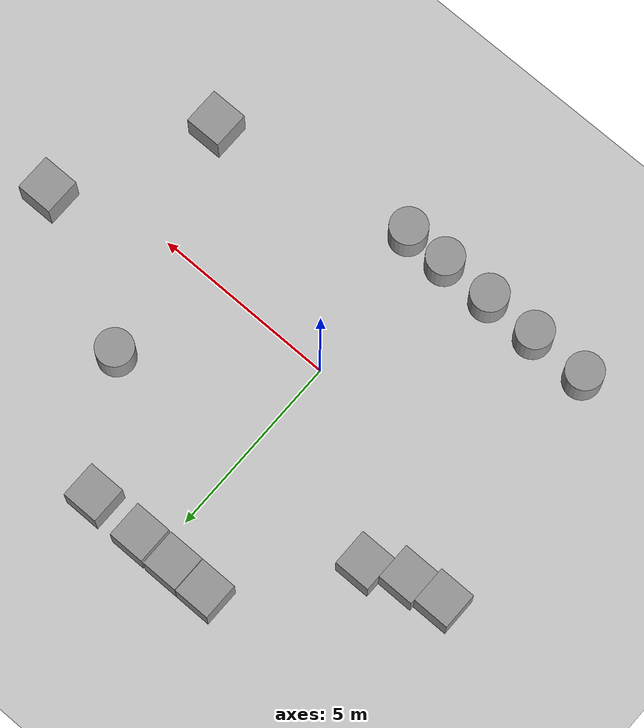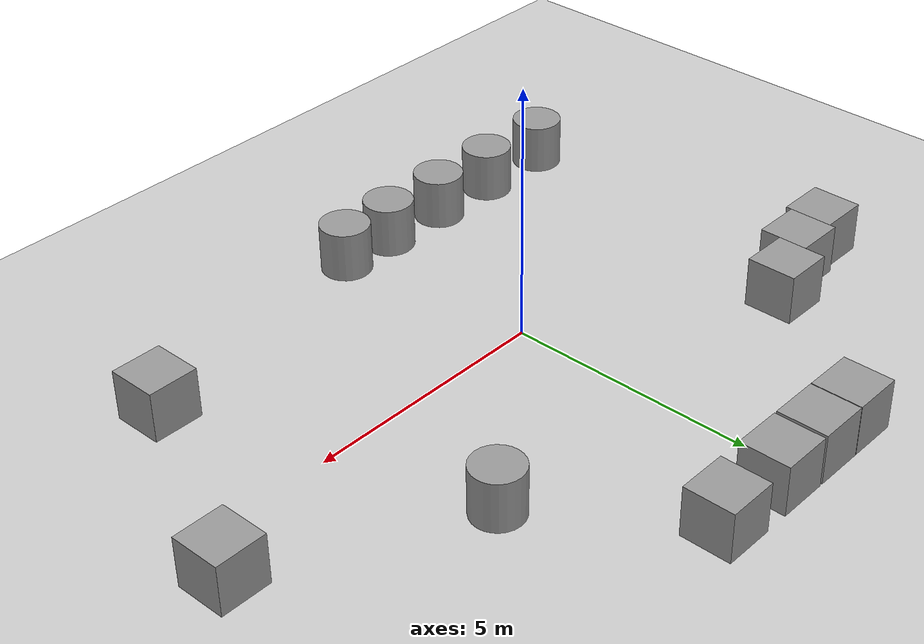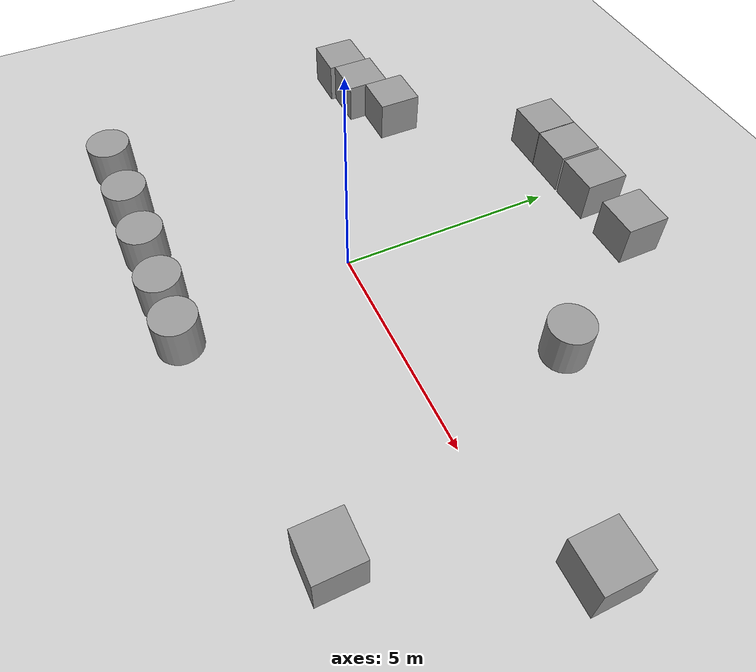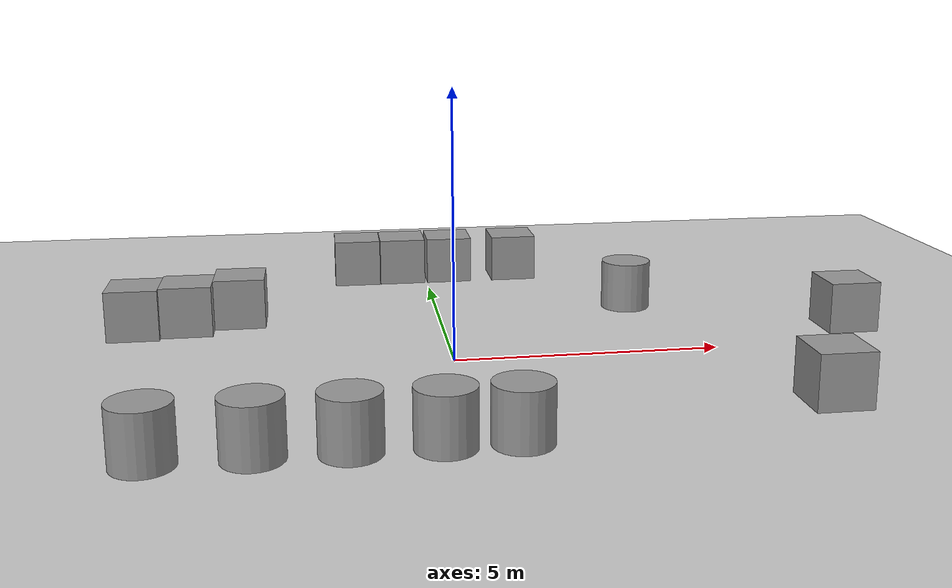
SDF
<sdf version="1.4">
 <world name="default">
  <physics type="ode">
   <gravity>0 0 -9.8</gravity>
   <ode>
    <solver><type>quick</type><iters>20</iters><sor>1</sor></solver>
    <constraints>
     <cfm>0</cfm>
     <erp>0.2</erp>
     <contact_max_correcting_vel>100</contact_max_correcting_vel>
     <contact_surface_layer>0</contact_surface_layer>
    </constraints>
   </ode>
   <max_step_size>0.001</max_step_size>
   <real_time_factor>1</real_time_factor>
   <real_time_update_rate>1000</real_time_update_rate>
  </physics>
  <light name="sun" type="directional">
   <pose>0 0 10 0 -0 0</pose>
   <diffuse>0.8 0.8 0.8 1</diffuse>
   <specular>0.2 0.2 0.2 1</specular>
   <attenuation>
    <range>1000</range>
    <constant>0.9</constant>
    <linear>0.01</linear>
    <quadratic>0.001</quadratic>
   </attenuation>
   <direction>-0.5 0.1 -0.9</direction>
  </light>
  <model name="ground_plane">
   <static>1</static>
   <link name="link">
    <collision name="collision">
     <geometry><plane><normal>0 0 1</normal><size>100 100</size></plane></geometry>
     <surface><friction><ode><mu>100</mu><mu2>50</mu2></ode></friction></surface>
    </collision>
    <visual name="visual">
     <cast_shadows>0</cast_shadows>
     <geometry><plane><normal>0 0 1</normal><size>100 100</size></plane></geometry>
     <material>
      <script><uri>file://media/materials/scripts/gazebo.material</uri><name>Gazebo/Grey</name></script>
     </material>
    </visual>
    <velocity_decay><linear>0</linear><angular>0</angular></velocity_decay>
   </link>
  </model>
  <scene><ambient>0.4 0.4 0.4 1</ambient><background>0.7 0.7 0.7 1</background><shadows>1</shadows></scene>
  <spherical_coordinates>
   <surface_model>EARTH_WGS84</surface_model>
   <latitude_deg>0</latitude_deg>
   <longitude_deg>0</longitude_deg>
   <elevation>0</elevation>
   <heading_deg>0</heading_deg>
  </spherical_coordinates>
  <model name="unit_box_1">
   <pose>6 -3 0.5 1e-06 -3.23117e-27 2e-05</pose>
   <link name="link">
    <inertial>
     <mass>1</mass>
     <inertia><ixx>1</ixx><ixy>0</ixy><ixz>0</ixz><iyy>1</iyy><iyz>0</iyz><izz>1</izz></inertia>
    </inertial>
    <collision name="collision"><geometry><box><size>1 1 1</size></box></geometry></collision>
    <visual name="visual">
     <geometry><box><size>1 1 1</size></box></geometry>
     <material>
      <script><uri>file://media/materials/scripts/gazebo.material</uri><name>Gazebo/Grey</name></script>
     </material>
    </visual>
    <velocity_decay><linear>0</linear><angular>0</angular></velocity_decay>
   </link>
   <static>0</static>
  </model>
  <model name="unit_box_2">
   <pose>8 1 0.499996 -3e-06 4e-06 -1.3e-05</pose>
   <link name="link">
    <inertial>
     <mass>1</mass>
     <inertia><ixx>1</ixx><ixy>0</ixy><ixz>0</ixz><iyy>1</iyy><iyz>0</iyz><izz>1</izz></inertia>
    </inertial>
    <collision name="collision"><geometry><box><size>1 1 1</size></box></geometry></collision>
    <visual name="visual">
     <geometry><box><size>1 1 1</size></box></geometry>
     <material>
      <script><uri>file://media/materials/scripts/gazebo.material</uri><name>Gazebo/Grey</name></script>
     </material>
    </visual>
    <velocity_decay><linear>0</linear><angular>0</angular></velocity_decay>
   </link>
   <static>0</static>
  </model>
  <model name="unit_cylinder_1">
   <pose>4 3 0.499997 0 0 -1e-06</pose>
   <link name="link">
    <inertial>
     <mass>1</mass>
     <inertia><ixx>1</ixx><ixy>0</ixy><ixz>0</ixz><iyy>1</iyy><iyz>0</iyz><izz>1</izz></inertia>
    </inertial>
    <collision name="collision">
     <geometry><cylinder><radius>0.5</radius><length>1</length></cylinder></geometry>
    </collision>
    <visual name="visual">
     <geometry><cylinder><radius>0.5</radius><length>1</length></cylinder></geometry>
     <material>
      <script><uri>file://media/materials/scripts/gazebo.material</uri><name>Gazebo/Grey</name></script>
     </material>
    </visual>
    <velocity_decay><linear>0</linear><angular>0</angular></velocity_decay>
   </link>
   <static>0</static>
  </model>
  <model name="unit_cylinder_2">
   <pose>-2 -4 0.499993 0 -0 -1e-06</pose>
   <link name="link">
    <inertial>
     <mass>1</mass>
     <inertia><ixx>1</ixx><ixy>0</ixy><ixz>0</ixz><iyy>1</iyy><iyz>0</iyz><izz>1</izz></inertia>
    </inertial>
    <collision name="collision">
     <geometry><cylinder><radius>0.5</radius><length>1</length></cylinder></geometry>
    </collision>
    <visual name="visual">
     <geometry><cylinder><radius>0.5</radius><length>1</length></cylinder></geometry>
     <material>
      <script><uri>file://media/materials/scripts/gazebo.material</uri><name>Gazebo/Grey</name></script>
     </material>
    </visual>
    <velocity_decay><linear>0</linear><angular>0</angular></velocity_decay>
   </link>
   <static>0</static>
  </model>
  <model name="unit_cylinder_3">
   <pose>-3.4317 -4 0.499997 0 0 -1e-06</pose>
   <link name="link">
    <inertial>
     <mass>1</mass>
     <inertia><ixx>1</ixx><ixy>0</ixy><ixz>0</ixz><iyy>1</iyy><iyz>0</iyz><izz>1</izz></inertia>
    </inertial>
    <collision name="collision">
     <geometry><cylinder><radius>0.5</radius><length>1</length></cylinder></geometry>
    </collision>
    <visual name="visual">
     <geometry><cylinder><radius>0.5</radius><length>1</length></cylinder></geometry>
     <material>
      <script><uri>file://media/materials/scripts/gazebo.material</uri><name>Gazebo/Grey</name></script>
     </material>
    </visual>
    <velocity_decay><linear>0</linear><angular>0</angular></velocity_decay>
   </link>
   <static>0</static>
  </model>
  <model name="unit_cylinder_4">
   <pose>-5 -4 0.499997 0 0 -1e-06</pose>
   <link name="link">
    <inertial>
     <mass>1</mass>
     <inertia><ixx>1</ixx><ixy>0</ixy><ixz>0</ixz><iyy>1</iyy><iyz>0</iyz><izz>1</izz></inertia>
    </inertial>
    <collision name="collision">
     <geometry><cylinder><radius>0.5</radius><length>1</length></cylinder></geometry>
    </collision>
    <visual name="visual">
     <geometry><cylinder><radius>0.5</radius><length>1</length></cylinder></geometry>
     <material>
      <script><uri>file://media/materials/scripts/gazebo.material</uri><name>Gazebo/Grey</name></script>
     </material>
    </visual>
    <velocity_decay><linear>0</linear><angular>0</angular></velocity_decay>
   </link>
   <static>0</static>
  </model>
  <model name="unit_box_3">
   <pose>-4.00001 2.99999 0.499996 4e-06 4e-06 4.1e-05</pose>
   <link name="link">
    <inertial>
     <mass>1</mass>
     <inertia><ixx>1</ixx><ixy>0</ixy><ixz>0</ixz><iyy>1</iyy><iyz>0</iyz><izz>1</izz></inertia>
    </inertial>
    <collision name="collision"><geometry><box><size>1 1 1</size></box></geometry></collision>
    <visual name="visual">
     <geometry><box><size>1 1 1</size></box></geometry>
     <material>
      <script><uri>file://media/materials/scripts/gazebo.material</uri><name>Gazebo/Grey</name></script>
     </material>
    </visual>
    <velocity_decay><linear>0</linear><angular>0</angular></velocity_decay>
   </link>
   <static>0</static>
  </model>
  <model name="unit_box_4">
   <pose>-5 2.5829 0.499996 4e-06 3e-06 4.2e-05</pose>
   <link name="link">
    <inertial>
     <mass>1</mass>
     <inertia><ixx>1</ixx><ixy>0</ixy><ixz>0</ixz><iyy>1</iyy><iyz>0</iyz><izz>1</izz></inertia>
    </inertial>
    <collision name="collision"><geometry><box><size>1 1 1</size></box></geometry></collision>
    <visual name="visual">
     <geometry><box><size>1 1 1</size></box></geometry>
     <material>
      <script><uri>file://media/materials/scripts/gazebo.material</uri><name>Gazebo/Grey</name></script>
     </material>
    </visual>
    <velocity_decay><linear>0</linear><angular>0</angular></velocity_decay>
   </link>
   <static>0</static>
  </model>
  <model name="unit_box_5">
   <pose>-6 2.46369 0.499996 4e-06 -3e-06 4.2e-05</pose>
   <link name="link">
    <inertial>
     <mass>1</mass>
     <inertia><ixx>1</ixx><ixy>0</ixy><ixz>0</ixz><iyy>1</iyy><iyz>0</iyz><izz>1</izz></inertia>
    </inertial>
    <collision name="collision"><geometry><box><size>1 1 1</size></box></geometry></collision>
    <visual name="visual">
     <geometry><box><size>1 1 1</size></box></geometry>
     <material>
      <script><uri>file://media/materials/scripts/gazebo.material</uri><name>Gazebo/Grey</name></script>
     </material>
    </visual>
    <velocity_decay><linear>0</linear><angular>0</angular></velocity_decay>
   </link>
   <static>0</static>
  </model>
  <model name="unit_box_6">
   <pose>-0.54344 6 0.5 -6.46235e-27 -1e-06 2.8e-05</pose>
   <link name="link">
    <inertial>
     <mass>1</mass>
     <inertia><ixx>1</ixx><ixy>0</ixy><ixz>0</ixz><iyy>1</iyy><iyz>0</iyz><izz>1</izz></inertia>
    </inertial>
    <collision name="collision"><geometry><box><size>1 1 1</size></box></geometry></collision>
    <visual name="visual">
     <geometry><box><size>1 1 1</size></box></geometry>
     <material>
      <script><uri>file://media/materials/scripts/gazebo.material</uri><name>Gazebo/Grey</name></script>
     </material>
    </visual>
    <velocity_decay><linear>0</linear><angular>0</angular></velocity_decay>
   </link>
   <static>0</static>
  </model>
  <model name="unit_box_7">
   <pose>0.516434 6 0.5 0 -0 6e-06</pose>
   <link name="link">
    <inertial>
     <mass>1</mass>
     <inertia><ixx>1</ixx><ixy>0</ixy><ixz>0</ixz><iyy>1</iyy><iyz>0</iyz><izz>1</izz></inertia>
    </inertial>
    <collision name="collision"><geometry><box><size>1 1 1</size></box></geometry></collision>
    <visual name="visual">
     <geometry><box><size>1 1 1</size></box></geometry>
     <material>
      <script><uri>file://media/materials/scripts/gazebo.material</uri><name>Gazebo/Grey</name></script>
     </material>
    </visual>
    <velocity_decay><linear>0</linear><angular>0</angular></velocity_decay>
   </link>
   <static>0</static>
  </model>
  <model name="unit_box_8">
   <pose>2 6 0.5 0 -0 3.6e-05</pose>
   <link name="link">
    <inertial>
     <mass>1</mass>
     <inertia><ixx>1</ixx><ixy>0</ixy><ixz>0</ixz><iyy>1</iyy><iyz>0</iyz><izz>1</izz></inertia>
    </inertial>
    <collision name="collision"><geometry><box><size>1 1 1</size></box></geometry></collision>
    <visual name="visual">
     <geometry><box><size>1 1 1</size></box></geometry>
     <material>
      <script><uri>file://media/materials/scripts/gazebo.material</uri><name>Gazebo/Grey</name></script>
     </material>
    </visual>
    <velocity_decay><linear>0</linear><angular>0</angular></velocity_decay>
   </link>
   <static>0</static>
  </model>
  <model name="unit_box_9">
   <pose>-1.55743 6 0.5 0 -0 0</pose>
   <link name="link">
    <inertial>
     <mass>1</mass>
     <inertia><ixx>1</ixx><ixy>0</ixy><ixz>0</ixz><iyy>1</iyy><iyz>0</iyz><izz>1</izz></inertia>
    </inertial>
    <collision name="collision"><geometry><box><size>1 1 1</size></box></geometry></collision>
    <visual name="visual">
     <geometry><box><size>1 1 1</size></box></geometry>
     <material>
      <script><uri>file://media/materials/scripts/gazebo.material</uri><name>Gazebo/Grey</name></script>
     </material>
    </visual>
    <velocity_decay><linear>0</linear><angular>0</angular></velocity_decay>
   </link>
   <static>0</static>
  </model>
  <model name="unit_cylinder_5">
   <pose>-0.584912 -4 0.499992 0 -0 0</pose>
   <link name="link">
    <inertial>
     <mass>1</mass>
     <inertia><ixx>1</ixx><ixy>0</ixy><ixz>0</ixz><iyy>1</iyy><iyz>0</iyz><izz>1</izz></inertia>
    </inertial>
    <collision name="collision">
     <geometry><cylinder><radius>0.5</radius><length>1</length></cylinder></geometry>
    </collision>
    <visual name="visual">
     <geometry><cylinder><radius>0.5</radius><length>1</length></cylinder></geometry>
     <material>
      <script><uri>file://media/materials/scripts/gazebo.material</uri><name>Gazebo/Grey</name></script>
     </material>
    </visual>
    <velocity_decay><linear>0</linear><angular>0</angular></velocity_decay>
   </link>
   <static>0</static>
  </model>
  <model name="unit_cylinder_6">
   <pose>0.588529 -4 0.499998 0 -0 0</pose>
   <link name="link">
    <inertial>
     <mass>1</mass>
     <inertia><ixx>1</ixx><ixy>0</ixy><ixz>0</ixz><iyy>1</iyy><iyz>0</iyz><izz>1</izz></inertia>
    </inertial>
    <collision name="collision">
     <geometry><cylinder><radius>0.5</radius><length>1</length></cylinder></geometry>
    </collision>
    <visual name="visual">
     <geometry><cylinder><radius>0.5</radius><length>1</length></cylinder></geometry>
     <material>
      <script><uri>file://media/materials/scripts/gazebo.material</uri><name>Gazebo/Grey</name></script>
     </material>
    </visual>
    <velocity_decay><linear>0</linear><angular>0</angular></velocity_decay>
   </link>
   <static>0</static>
  </model>
 </world>
</sdf>
